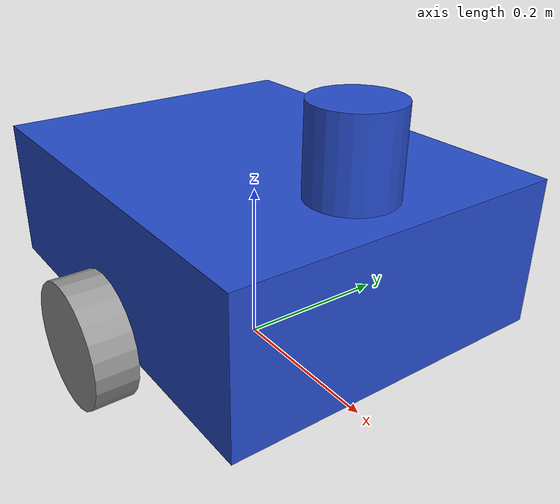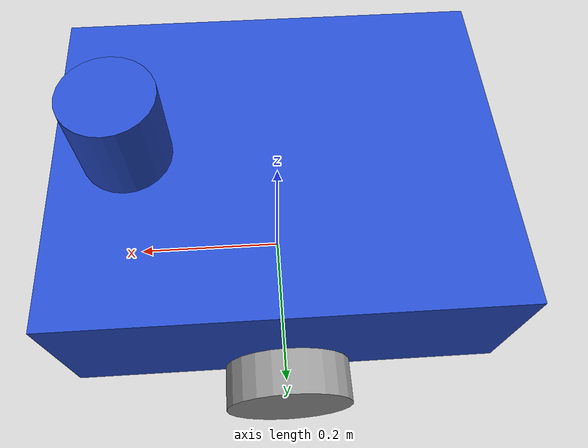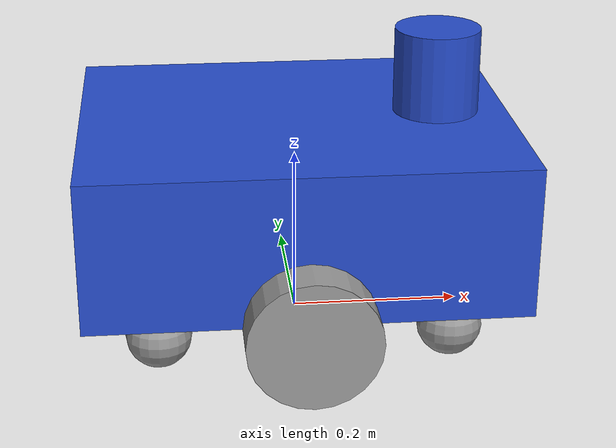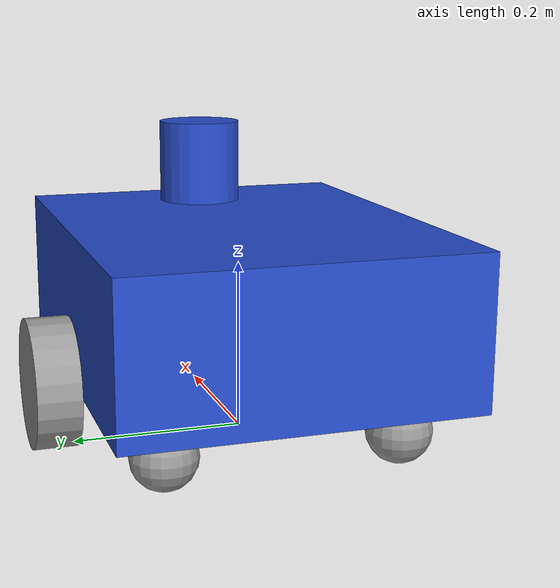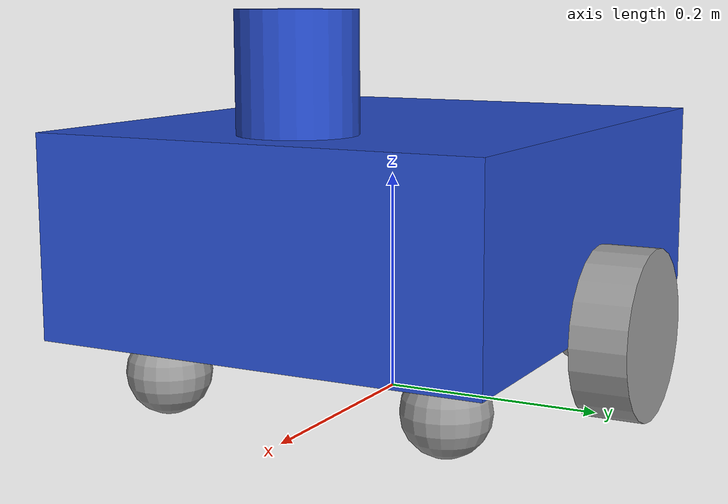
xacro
<?xml version="1.0"?>
<robot name="prestobot" xmlns:xacro="http://www.ros.org/wiki/xacro">

    <xacro:arg name="is_sim" default="false"/>

    <xacro:include filename="common_properties.xacro" />
    <xacro:include filename="prestobot.parts.xacro" />
    <xacro:include filename="prestobot.ros2_control.xacro" />

    <xacro:if value="$(arg is_sim)">
        <xacro:include filename="prestobot.gazebo.xacro" />
    </xacro:if>

</robot>

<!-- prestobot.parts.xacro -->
<robot xmlns:xacro="http://www.ros.org/wiki/xacro">

    <xacro:property name="base_length" value="0.5" />
    <xacro:property name="base_width" value="0.4" />
    <xacro:property name="base_height" value="0.175" />
    <xacro:property name="lidar_radius" value="0.05" />
    <xacro:property name="lidar_length" value="0.1" />
    <xacro:property name="wheel_radius" value="0.075" />
    <xacro:property name="wheel_length" value="0.05" />

    <link name="base_footprint" />

    <link name="base_link">
        <visual>
            <geometry>
                <box size="${base_length} ${base_width} ${base_height}" />
            </geometry>
            <origin xyz="0 0 ${base_height / 2.0}" rpy="0 0 0" />
            <material name="blue" />
        </visual>
        <collision>
            <geometry>
                <box size="${base_length} ${base_width} ${base_height}" />
            </geometry>
            <origin xyz="0 0 ${base_height / 2.0}" rpy="0 0 0" />
        </collision>
        <xacro:box_inertia m="5.0" x="${base_length}" y="${base_width}" z="${base_height}"
                           o_xyz="0 0 ${base_height / 2.0}" o_rpy="0 0 0" />
    </link>

    <link name="base_scan">
        <visual>
            <geometry>
                <cylinder radius="${lidar_radius}" length="${lidar_length}" />
            </geometry>
            <origin xyz="0 0 ${lidar_length / 2.0}" rpy="0 0 0" />
            <material name="blue" />
        </visual>
        <collision>
            <geometry>
                <cylinder radius="${lidar_radius}" length="${lidar_length}" />
            </geometry>
            <origin xyz="0 0 ${lidar_length / 2.0}" rpy="0 0 0" />
        </collision>
        <xacro:cylinder_inertia m="0.1" r="${lidar_radius}" l="${lidar_length}"
                                o_xyz="0 0 ${lidar_length / 2.0}" o_rpy="0 0 0" />
    </link>

    <link name="imu_link" />

    <xacro:macro name="wheel_link" params="prefix">
        <link name="${prefix}_wheel_link">
            <visual>
                <geometry>
                    <cylinder radius="${wheel_radius}" length="${wheel_length}" />
                </geometry>
                <origin xyz="0 0 0" rpy="${pi / 2.0} 0 0" />
                <material name="grey" />
            </visual>
            <collision>
                <geometry>
                    <sphere radius="${wheel_radius}" />
                </geometry>
                <origin xyz="0 0 0" rpy="0 0 0" />
            </collision>
            <xacro:cylinder_inertia m="1.0" r="${wheel_radius}" l="${wheel_length}"
                                    o_xyz="0 0 0" o_rpy="${pi / 2.0} 0 0" />
        </link>
    </xacro:macro>

    <xacro:wheel_link prefix="left" />
    <xacro:wheel_link prefix="right" />

    <xacro:macro name="caster_link" params="prefix">
        <link name="${prefix}_caster_link">
            <visual>
                <geometry>
                    <sphere radius="${wheel_radius / 2.0}" />
                </geometry>
                <origin xyz="0 0 0" rpy="0 0 0" />
                <material name="grey" />
            </visual>
            <collision>
                <geometry>
                    <sphere radius="${wheel_radius / 2.0}" />
                </geometry>
                <origin xyz="0 0 0" rpy="0 0 0" />
            </collision>
            <xacro:sphere_inertia m="0.5" r="${wheel_radius / 2.0}"
                                  o_xyz="0 0 0" o_rpy="0 0 0" />
        </link>
    </xacro:macro>

    <xacro:caster_link prefix="front_left" />
    <xacro:caster_link prefix="front_right" />
    <xacro:caster_link prefix="rear_left" />
    <xacro:caster_link prefix="rear_right" />

    <joint name="base_joint" type="fixed">
        <parent link="base_footprint" />
        <child link="base_link" />
        <origin xyz="0 0 ${wheel_radius}" rpy="0 0 0"/>
    </joint>

    <joint name="base_scan_joint" type="fixed">
        <parent link="base_link" />
        <child link="base_scan" />
        <origin xyz="${base_length / 3.0} 0 ${base_height}" rpy="0 0 0" />
    </joint>

    <joint name="imu_joint" type="fixed">
        <parent link="base_link" />
        <child link="imu_link" />
        <origin xyz="0 0 ${base_height}" rpy="0 0 0" />
    </joint>

    <joint name="base_left_wheel_joint" type="continuous">
        <parent link="base_link" />
        <child link="left_wheel_link" />
        <origin xyz="0 ${(base_width + wheel_length) / 2.0} 0" rpy="0 0 0" />
        <axis xyz="0 1 0" />
    </joint>

    <joint name="base_right_wheel_joint" type="continuous">
        <parent link="base_link" />
        <child link="right_wheel_link" />
        <origin xyz="0 ${-(base_width + wheel_length) / 2.0} 0" rpy="0 0 0" />
        <axis xyz="0 1 0" />
    </joint>

    <joint name="base_front_left_caster_joint" type="fixed">
        <parent link="base_link" />
        <child link="front_left_caster_link" />
        <origin xyz="${base_length / 3.0} ${base_width / 3.0} ${-wheel_radius / 2.0}" rpy="0 0 0" />
    </joint>

    <joint name="base_front_right_caster_joint" type="fixed">
        <parent link="base_link" />
        <child link="front_right_caster_link" />
        <origin xyz="${base_length / 3.0} ${-base_width / 3.0} ${-wheel_radius / 2.0}" rpy="0 0 0" />
    </joint>

    <joint name="base_rear_left_caster_joint" type="fixed">
        <parent link="base_link" />
        <child link="rear_left_caster_link" />
        <origin xyz="${-base_length / 3.0} ${base_width / 3.0} ${-wheel_radius / 2.0}" rpy="0 0 0" />
    </joint>

    <joint name="base_rear_right_caster_joint" type="fixed">
        <parent link="base_link" />
        <child link="rear_right_caster_link" />
        <origin xyz="${-base_length / 3.0} ${-base_width / 3.0} ${-wheel_radius / 2.0}" rpy="0 0 0" />
    </joint>

</robot>
